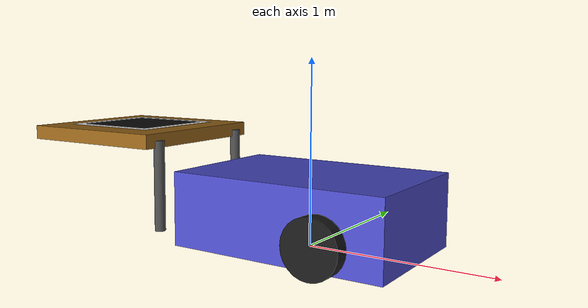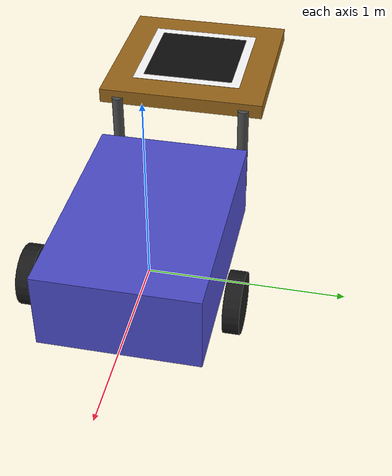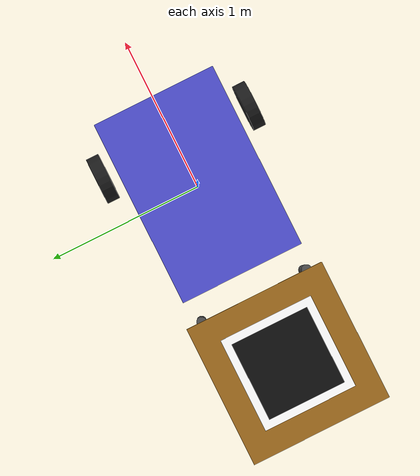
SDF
<?xml version="1.0"?>
<sdf version="1.9">
  <model name="rover_with_cart">

    <!-- ── Rover Base ─────────────────────────────── -->
    <link name="base_link">
      <pose>0 0 0.2 0 0 0</pose>
      <inertial>
        <mass>30.0</mass>
        <inertia>
          <ixx>1.5</ixx><iyy>2.0</iyy><izz>2.5</izz>
        </inertia>
      </inertial>
      <collision name="body_col">
        <geometry><box><size>1.2 0.8 0.4</size></box></geometry>
      </collision>
      <visual name="body_vis">
        <geometry><box><size>1.2 0.8 0.4</size></box></geometry>
        <material>
          <ambient>0.2 0.2 0.7 1</ambient>
          <diffuse>0.3 0.3 0.8 1</diffuse>
        </material>
      </visual>
    </link>

    <!-- Left Drive Wheel -->
    <link name="left_wheel">
      <pose>0.3 0.5 0.15 1.5707 0 0</pose>
      <inertial>
        <mass>2.0</mass>
        <inertia><ixx>0.05</ixx><iyy>0.05</iyy><izz>0.08</izz></inertia>
      </inertial>
      <collision name="col">
        <geometry><cylinder><radius>0.15</radius><length>0.08</length></cylinder></geometry>
        <surface>
          <friction><ode><mu>1.5</mu><mu2>1.5</mu2></ode></friction>
        </surface>
      </collision>
      <visual name="vis">
        <geometry><cylinder><radius>0.15</radius><length>0.08</length></cylinder></geometry>
        <material><ambient>0.1 0.1 0.1 1</ambient></material>
      </visual>
    </link>

    <joint name="left_wheel_joint" type="revolute">
      <parent>base_link</parent>
      <child>left_wheel</child>
      <axis>
        <xyz>0 0 1</xyz>
        <limit><lower>-1e16</lower><upper>1e16</upper></limit>
      </axis>
    </joint>

    <!-- Right Drive Wheel -->
    <link name="right_wheel">
      <pose>0.3 -0.5 0.15 1.5707 0 0</pose>
      <inertial>
        <mass>2.0</mass>
        <inertia><ixx>0.05</ixx><iyy>0.05</iyy><izz>0.08</izz></inertia>
      </inertial>
      <collision name="col">
        <geometry><cylinder><radius>0.15</radius><length>0.08</length></cylinder></geometry>
        <surface>
          <friction><ode><mu>1.5</mu><mu2>1.5</mu2></ode></friction>
        </surface>
      </collision>
      <visual name="vis">
        <geometry><cylinder><radius>0.15</radius><length>0.08</length></cylinder></geometry>
        <material><ambient>0.1 0.1 0.1 1</ambient></material>
      </visual>
    </link>

    <joint name="right_wheel_joint" type="revolute">
      <parent>base_link</parent>
      <child>right_wheel</child>
      <axis>
        <xyz>0 0 1</xyz>
        <limit><lower>-1e16</lower><upper>1e16</upper></limit>
      </axis>
    </joint>

    <!-- Rear Caster Wheel (free rolling) -->
    <link name="caster_wheel">
      <pose>-0.4 0 0.1 0 0 0</pose>
      <inertial>
        <mass>0.5</mass>
        <inertia><ixx>0.01</ixx><iyy>0.01</iyy><izz>0.01</izz></inertia>
      </inertial>
      <collision name="col">
        <geometry><sphere><radius>0.1</radius></sphere></geometry>
        <surface>
          <friction><ode><mu>0.0</mu><mu2>0.0</mu2></ode></friction>
        </surface>
      </collision>
      <visual name="vis">
        <geometry><sphere><radius>0.1</radius></sphere></geometry>
        <material><ambient>0.3 0.3 0.3 1</ambient></material>
      </visual>
    </link>

    <joint name="caster_joint" type="ball">
      <parent>base_link</parent>
      <child>caster_wheel</child>
    </joint>

    <!-- ── Cart (attached to rear of rover) ─────── -->
    <link name="cart_platform">
      <!-- Cart sits behind rover, raised to carry drone -->
      <pose>-1.2 0 0.55 0 0 0</pose>
      <inertial>
        <mass>10.0</mass>
        <inertia><ixx>0.3</ixx><iyy>0.5</iyy><izz>0.5</izz></inertia>
      </inertial>
      <collision name="col">
        <geometry><box><size>0.9 0.9 0.08</size></box></geometry>
      </collision>
      <visual name="vis">
        <geometry><box><size>0.9 0.9 0.08</size></box></geometry>
        <material>
          <ambient>0.5 0.3 0.1 1</ambient>
          <diffuse>0.6 0.4 0.1 1</diffuse>
        </material>
      </visual>

      <!-- ArUco Marker (ID=42) on cart surface - white background -->
      <visual name="aruco_bg">
        <pose>0 0 0.045 0 0 0</pose>
        <geometry><box><size>0.6 0.6 0.001</size></box></geometry>
        <material>
          <ambient>0.95 0.95 0.95 1</ambient>
          <diffuse>1.0 1.0 1.0 1</diffuse>
        </material>
      </visual>

      <!-- ArUco marker pattern (simplified black square) -->
      <visual name="aruco_inner">
        <pose>0 0 0.046 0 0 0</pose>
        <geometry><box><size>0.5 0.5 0.001</size></box></geometry>
        <material>
          <ambient>0.05 0.05 0.05 1</ambient>
          <diffuse>0.05 0.05 0.05 1</diffuse>
        </material>
      </visual>
      <!-- Note: Real ArUco texture would use a mesh with UV map.
           For simulation, use a camera with calibration and real ArUco PNG texture -->
    </link>

    <!-- Cart legs (vertical supports) -->
    <link name="cart_leg_FL">
      <pose>-0.75 0.35 0.3 0 0 0</pose>
      <inertial><mass>0.3</mass><inertia><ixx>0.001</ixx><iyy>0.001</iyy><izz>0.001</izz></inertia></inertial>
      <collision name="col"><geometry><cylinder><radius>0.03</radius><length>0.5</length></cylinder></geometry></collision>
      <visual name="vis"><geometry><cylinder><radius>0.03</radius><length>0.5</length></cylinder></geometry>
        <material><ambient>0.3 0.3 0.3 1</ambient></material></visual>
    </link>
    <joint name="cart_leg_FL_joint" type="fixed">
      <parent>cart_platform</parent><child>cart_leg_FL</child>
    </joint>

    <link name="cart_leg_FR">
      <pose>-0.75 -0.35 0.3 0 0 0</pose>
      <inertial><mass>0.3</mass><inertia><ixx>0.001</ixx><iyy>0.001</iyy><izz>0.001</izz></inertia></inertial>
      <collision name="col"><geometry><cylinder><radius>0.03</radius><length>0.5</length></cylinder></geometry></collision>
      <visual name="vis"><geometry><cylinder><radius>0.03</radius><length>0.5</length></cylinder></geometry>
        <material><ambient>0.3 0.3 0.3 1</ambient></material></visual>
    </link>
    <joint name="cart_leg_FR_joint" type="fixed">
      <parent>cart_platform</parent><child>cart_leg_FR</child>
    </joint>

    <joint name="cart_to_rover" type="fixed">
      <parent>base_link</parent>
      <child>cart_platform</child>
    </joint>

    <!-- ── Differential Drive Plugin ─────────────── -->
    <plugin filename="gz-sim-diff-drive-system"
            name="gz::sim::systems::DiffDrive">
      <left_joint>left_wheel_joint</left_joint>
      <right_joint>right_wheel_joint</right_joint>
      <wheel_separation>1.0</wheel_separation>
      <wheel_radius>0.15</wheel_radius>
      <odom_publish_frequency>20</odom_publish_frequency>
      <topic>cmd_vel</topic>
      <odom_topic>odom</odom_topic>
      <frame_id>odom</frame_id>
      <child_frame_id>base_link</child_frame_id>
    </plugin>

    <!-- ── Pose Publisher (for rover TF) ─────────── -->
    <plugin filename="gz-sim-pose-publisher-system"
            name="gz::sim::systems::PosePublisher">
      <publish_link_pose>true</publish_link_pose>
      <publish_nested_model_pose>true</publish_nested_model_pose>
      <publish_frequency>20</publish_frequency>
    </plugin>

  </model>
</sdf>
